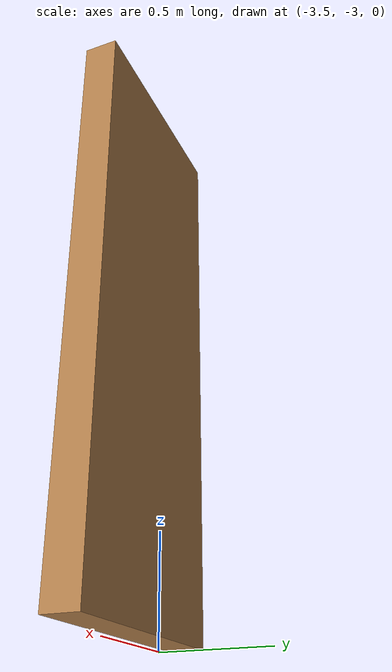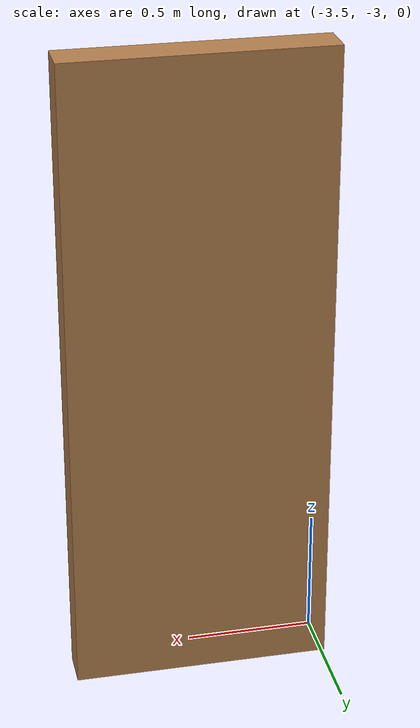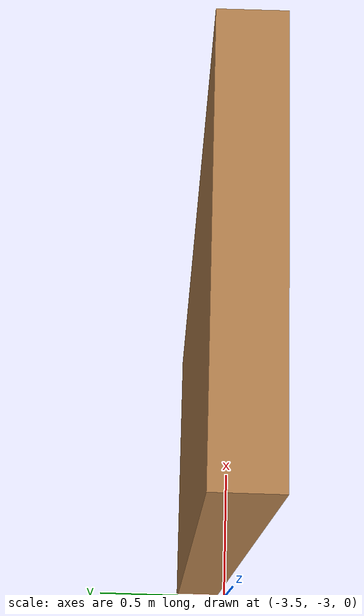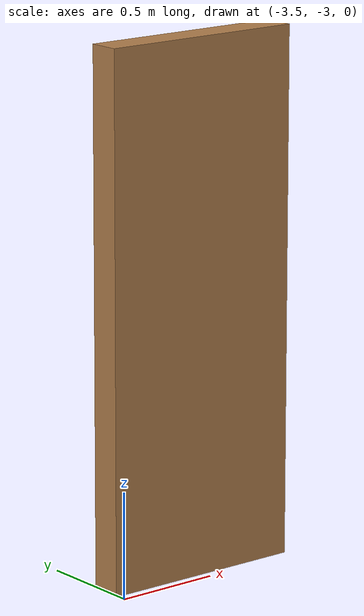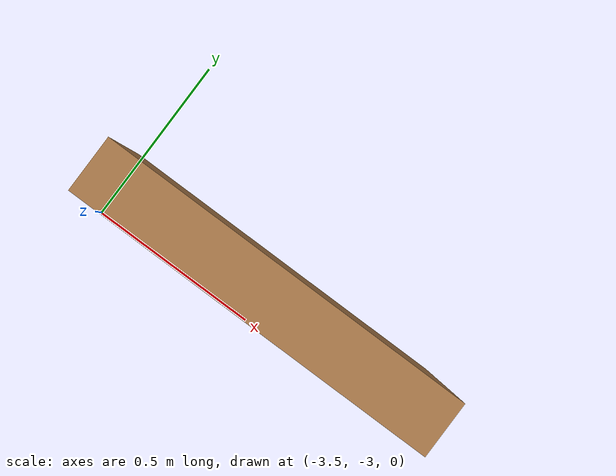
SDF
<?xml version='1.0'?>
<sdf version='1.5'>
  <model name='oo'>
    <pose>-3.01447 -2.8828 0 0 -0 0</pose>
    <link name='Wall_35'>
      <collision name='Wall_35_Collision'>
        <geometry>
          <box>
            <size>1 0.15 2.5</size>
          </box>
        </geometry>
        <pose>0 0 1.25 0 -0 0</pose>
      </collision>
      <visual name='Wall_35_Visual'>
        <pose>0 0 1.25 0 -0 0</pose>
        <geometry>
          <box>
            <size>1 0.15 2.5</size>
          </box>
        </geometry>
        <material>
          <script>
            <uri>file://media/materials/scripts/gazebo.material</uri>
            <name>Gazebo/Wood</name>
          </script>
          <ambient>1 1 1 1</ambient>
        </material>
      </visual>
      <pose>0 0 0 0 -0 3.14159</pose>
    </link>
    <static>1</static>
  </model>
</sdf>
